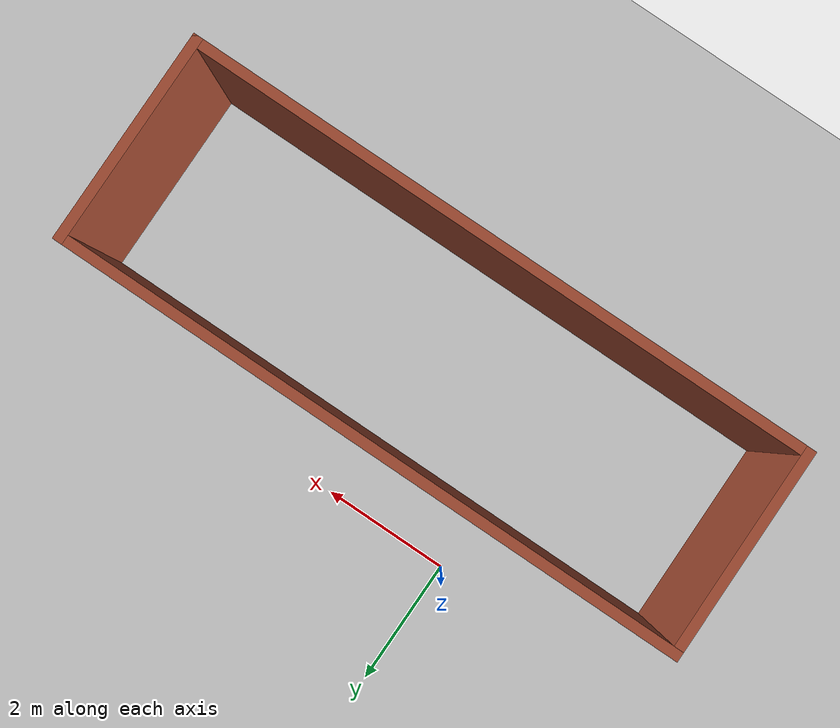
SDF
<?xml version="1.0" ?>
<sdf version='1.6'>
  <world name='default'>

    <include>
      <uri>model://sun</uri>
    </include>
    <!-- A ground plane -->
    <include>
      <uri>model://ground_plane</uri>
    </include>

  <model name='small_room_bricks'>
    <pose frame=''>1.862 -2.569 0 0 -0 0</pose>
    <link name='Wall_0'>
      <collision name='Wall_0_Collision'>
        <geometry>
          <box>
            <size>9.75 0.15 2.5</size>
          </box>
        </geometry>
        <pose frame=''>0 0 1.25 0 -0 0</pose>
      </collision>
      <visual name='Wall_0_Visual'>
        <pose frame=''>0 0 1.25 0 -0 0</pose>
        <geometry>
          <box>
            <size>9.75 0.15 2.5</size>
          </box>
        </geometry>
        <material>
          <script>
            <uri>file://media/materials/scripts/gazebo.material</uri>
            <name>Gazebo/Bricks</name>
          </script>
          <ambient>1 1 1 1</ambient>
        </material>
        <meta>
          <layer>0</layer>
        </meta>
      </visual>
      <pose frame=''>-0 1.55 0 0 -0 0</pose>
    </link>
    <link name='Wall_1'>
      <collision name='Wall_1_Collision'>
        <geometry>
          <box>
            <size>3.25 0.15 2.5</size>
          </box>
        </geometry>
        <pose frame=''>0 0 1.25 0 -0 0</pose>
      </collision>
      <visual name='Wall_1_Visual'>
        <pose frame=''>0 0 1.25 0 -0 0</pose>
        <geometry>
          <box>
            <size>3.25 0.15 2.5</size>
          </box>
        </geometry>
        <material>
          <script>
            <uri>file://media/materials/scripts/gazebo.material</uri>
            <name>Gazebo/Bricks</name>
          </script>
          <ambient>1 1 1 1</ambient>
        </material>
        <meta>
          <layer>0</layer>
        </meta>
      </visual>
      <pose frame=''>4.8 0 0 0 -0 -1.5708</pose>
    </link>
    <link name='Wall_2'>
      <collision name='Wall_2_Collision'>
        <geometry>
          <box>
            <size>9.75 0.15 2.5</size>
          </box>
        </geometry>
        <pose frame=''>0 0 1.25 0 -0 0</pose>
      </collision>
      <visual name='Wall_2_Visual'>
        <pose frame=''>0 0 1.25 0 -0 0</pose>
        <geometry>
          <box>
            <size>9.75 0.15 2.5</size>
          </box>
        </geometry>
        <material>
          <script>
            <uri>file://media/materials/scripts/gazebo.material</uri>
            <name>Gazebo/Bricks</name>
          </script>
          <ambient>1 1 1 1</ambient>
        </material>
        <meta>
          <layer>0</layer>
        </meta>
      </visual>
      <pose frame=''>-0 -1.55 0 0 -0 3.14159</pose>
    </link>
    <link name='Wall_3'>
      <collision name='Wall_3_Collision'>
        <geometry>
          <box>
            <size>3.25 0.15 2.5</size>
          </box>
        </geometry>
        <pose frame=''>0 0 1.25 0 -0 0</pose>
      </collision>
      <visual name='Wall_3_Visual'>
        <pose frame=''>0 0 1.25 0 -0 0</pose>
        <geometry>
          <box>
            <size>3.25 0.15 2.5</size>
          </box>
        </geometry>
        <material>
          <script>
            <uri>file://media/materials/scripts/gazebo.material</uri>
            <name>Gazebo/Bricks</name>
          </script>
          <ambient>1 1 1 1</ambient>
        </material>
        <meta>
          <layer>0</layer>
        </meta>
      </visual>
      <pose frame=''>-4.8 0 0 0 -0 1.5708</pose>
    </link>
    <static>1</static>
  </model>
  </world>
</sdf>
